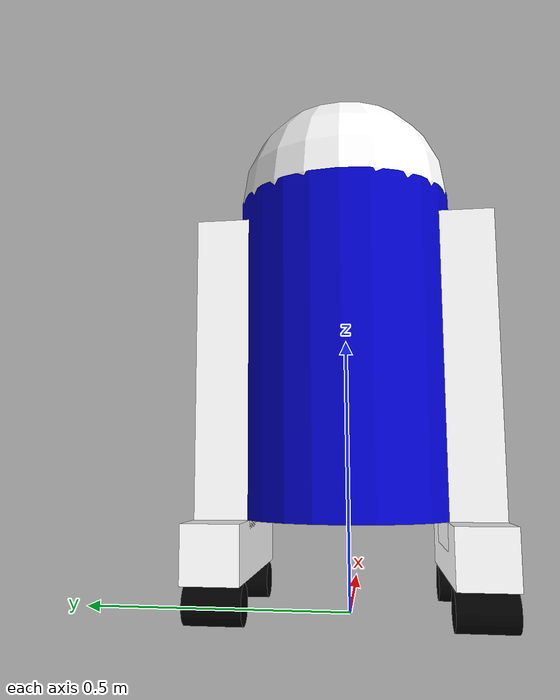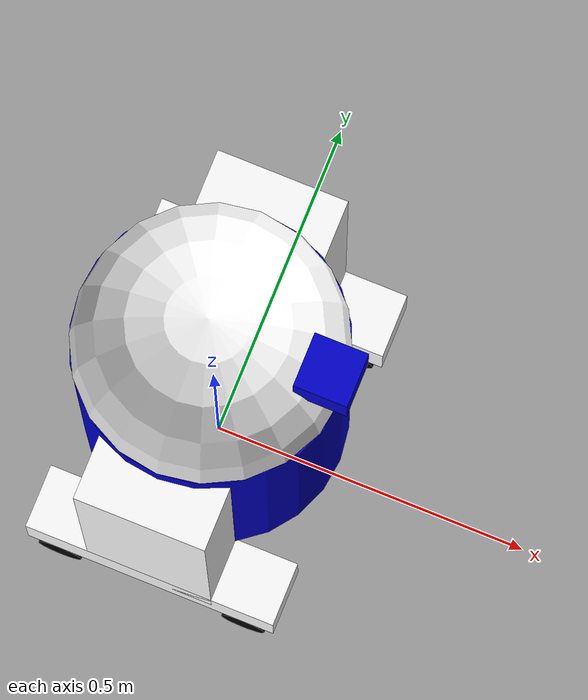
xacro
<?xml version="1.0"?>
<robot name="R2D2" xmlns:xacro="http://ros.org/wiki/xacro">
    <!--Constant-->
    <xacro:property name="PI" value="3.1415926535"/>

    <!--Chassis Parameters-->
    <xacro:property name="bodymass" value="10"/>
    <xacro:property name="bodyrad" value="0.2"/>
    <xacro:property name="bodylen" value="0.6"/>

    <!--Leg Parameters-->
    <xacro:property name="legmass" value="10"/>
    <xacro:property name="leglen" value="0.6"/>
    <xacro:property name="legwidth" value="0.2"/>
    <xacro:property name="leghigh" value="0.1"/>

    <!--Wheel Parameters-->
    <xacro:property name="wheelmass" value="1"/>
    <xacro:property name="wheelrad" value="0.035"/>
    <xacro:property name="wheellen" value="0.1"/>

    <!--Head Parameters-->
    <xacro:property name="headmass" value="2"/>
    <xacro:property name="headrad" value="0.2"/>

    <!-- Import Rviz Colors -->
    <xacro:include filename="$(find robotica)/models/materials.xacro"/>

    <!--Inertial Mask-->
    <xacro:macro name="default_inertial" params="mass">
        <inertial>
            <mass value="${mass}"/>
            <inertia ixx="1.0" ixy="0.0" ixz="0.0" iyy="1.0" iyz="0.0" izz="1.0" />
        </inertial>
    </xacro:macro>

    <!--Model-->

    <link name="base_link">
        <visual>
            <geometry>
                <cylinder radius="${bodyrad}" length="${bodylen}" />
            </geometry>
            <material name="blue"/>
            <origin xyz="0 0 0.47"/>
        </visual>
        <collision>
            <geometry>
                <cylinder radius="${bodyrad}" length="${bodylen}" />
            </geometry>
            <origin xyz="0 0 0.47"/>
        </collision>
        <xacro:default_inertial mass="${bodymass}"/>
    </link>

    <joint name="base_to_right_leg" type="fixed">
        <parent link="base_link"/>
        <child link="right_leg"/>
        <origin xyz="0 -0.22 0.72"/>
    </joint>

    <link name="right_leg">
        <visual>
            <geometry>
                <box size="${leglen} ${leghigh} ${legwidth}"/>
            </geometry>
            <origin rpy="0 ${PI/2} 0" xyz="0 0 -0.3"/>
            <material name="white"/>
        </visual>
        <collision>
            <geometry>
                <box size="${leglen} ${leghigh} ${legwidth}"/>
            </geometry>
            <origin rpy="0 ${PI/2} 0" xyz="0 0 -0.3"/>
        </collision>
        <xacro:default_inertial mass="${legmass}"/>
    </link>

    <joint name="base_to_left_leg" type="fixed">
        <parent link="base_link"/>
        <child link="left_leg"/>
        <origin xyz="0 0.22 0.72"/>
    </joint>

    <link name="left_leg">
        <visual>
            <geometry>
                <box size="${leglen} ${leghigh} ${legwidth}"/>
            </geometry>
            <origin rpy="0 ${PI/2} 0" xyz="0 0 -0.3"/>
            <material name="white"/>
        </visual>
        <collision>
            <geometry>
                <box size="${leglen} ${leghigh} ${legwidth}"/>
            </geometry>
            <origin rpy="0 ${PI/2} 0" xyz="0 0 -0.3"/>
        </collision>
        <xacro:default_inertial mass="${legmass}"/>
    </link>

    <joint name="right_base_joint" type="fixed">
        <parent link="right_leg"/>
        <child link="right_base"/>
        <origin xyz="0 0 -0.6"/>
    </joint>

    <link name="right_base">
        <visual>
            <geometry>
                <box size="0.4 0.1 0.1"/>
            </geometry>
            <material name="white"/>
        </visual>
        <collision>
            <geometry>
                <box size="0.4 0.1 0.1"/>
            </geometry>
        </collision>
        <xacro:default_inertial mass="10"/>
    </link>

    <joint name="right_front_wheel_joint" type="continuous">
        <parent link="right_base"/>
        <child link="right_front_wheel"/>
        <origin xyz="0.15 0 -0.085"/>
        <axis xyz="0 1 0"/>
    </joint>

    <link name="right_front_wheel">
        <visual>
            <geometry>
                <cylinder radius="${wheelrad}" length="${wheellen}"/>
            </geometry>
            <material name="black"/>
            <origin rpy="${PI/2} 0 0" xyz="0 0 0"/>
        </visual>
        <collision>
            <geometry>
                <cylinder radius="${wheelrad}" length="${wheellen}"/>
            </geometry>
            <origin rpy="${PI/2} 0 0" xyz="0 0 0"/>
        </collision>
        <xacro:default_inertial mass="${wheelmass}"/>
    </link>

    <joint name="right_back_wheel_joint" type="continuous">
        <parent link="right_base"/>
        <child link="right_back_wheel"/>
        <origin xyz="-0.15 0 -0.085"/>
        <axis xyz="0 1 0"/>
    </joint>

    <link name="right_back_wheel">
        <visual>
            <geometry>
                <cylinder radius="${wheelrad}" length="${wheellen}"/>
            </geometry>
            <material name="black"/>
            <origin rpy="${PI/2} 0 0" xyz="0 0 0"/>
        </visual>
        <collision>
            <geometry>
                <cylinder radius="${wheelrad}" length="${wheellen}"/>
            </geometry>
            <origin rpy="${PI/2} 0 0" xyz="0 0 0"/>
        </collision>
        <xacro:default_inertial mass="${wheelmass}"/>
    </link>

    <joint name="left_base_joint" type="fixed">
        <parent link="left_leg"/>
        <child link="left_base"/>
        <origin xyz="0 0 -0.6"/>
        <axis xyz="0 1 0"/>
    </joint>

    <link name="left_base">
        <visual>
            <geometry>
                <box size="0.4 0.1 0.1"/>
            </geometry>
            <material name="white"/>
        </visual>
        <collision>
            <geometry>
                <box size="0.4 0.1 0.1"/>
            </geometry>
        </collision>
        <xacro:default_inertial mass="10"/>
    </link>

    <joint name="left_front_wheel_joint" type="continuous">
        <parent link="left_base"/>
        <child link="left_front_wheel"/>
        <origin xyz="0.15 0 -0.085"/>
        <axis xyz="0 1 0"/>
    </joint>

    <link name="left_front_wheel">
        <visual>
            <geometry>
                <cylinder radius="${wheelrad}" length="${wheellen}"/>
            </geometry>
            <material name="black"/>
            <origin rpy="${PI/2} 0 0" xyz="0 0 0"/>
        </visual>
        <collision>
            <geometry>
                <cylinder radius="${wheelrad}" length="${wheellen}"/>
            </geometry>
            <origin rpy="${PI/2} 0 0" xyz="0 0 0"/>
        </collision>
        <xacro:default_inertial mass="${wheelmass}"/>
    </link>

    <joint name="left_back_wheel_joint" type="continuous">
        <parent link="left_base"/>
        <child link="left_back_wheel"/>
        <origin xyz="-0.15 0 -0.085"/>
        <axis xyz="0 1 0"/>
    </joint>

    <link name="left_back_wheel">
        <visual>
            <geometry>
                <cylinder radius="${wheelrad}" length="${wheellen}"/>
            </geometry>
            <material name="black"/>
            <origin rpy="${PI/2} 0 0" xyz="0 0 0"/>
        </visual>
        <collision>
            <geometry>
                <cylinder radius="${wheelrad}" length="${wheellen}"/>
            </geometry>
            <origin rpy="${PI/2} 0 0" xyz="0 0 0"/>
        </collision>
        <xacro:default_inertial mass="${wheelmass}"/>
    </link>

    <joint name="head_swivel" type="continuous">
        <parent link="base_link"/>
        <child link="head"/>
        <origin xyz="0 0 0.77"/>
        <axis xyz="0 0 1"/>
    </joint>

    <link name="head">
        <visual>
            <geometry>
                <sphere radius="${headrad}"/>
            </geometry>
            <material name="white"/>
        </visual>
        <collision>
            <geometry>
                <sphere radius="${headrad}"/>
            </geometry>
        </collision>
        <xacro:default_inertial mass="${headmass}"/>
    </link>

    <joint name="tobox" type="fixed">
        <parent link="head"/>
        <child link="box"/>
        <origin xyz="0.1814 0 0.1414"/>
    </joint>

    <link name="box">
        <visual>
            <geometry>
                <box size="0.08 0.08 0.08"/>
            </geometry>
            <material name="blue"/>
        </visual>
        <collision>
            <geometry>
                <box size="0.08 0.08 0.08"/>
            </geometry>
        </collision>
        <xacro:default_inertial mass="1"/>
    </link>

    <!--Transmition-->

    <transmission name="right_front_wheel_trans">
      <type>transmission_interface/SimpleTransmission</type>
      <actuator name="right_front_wheel_motor">
        <mechanicalReduction>1</mechanicalReduction>
      </actuator>
      <joint name="right_front_wheel_joint">
        <hardwareInterface>hardware_interface/VelocityJointInterface</hardwareInterface>
      </joint>
    </transmission>

    <transmission name="right_back_wheel_trans">
      <type>transmission_interface/SimpleTransmission</type>
      <actuator name="right_back_wheel_motor">
        <mechanicalReduction>1</mechanicalReduction>
      </actuator>
      <joint name="right_back_wheel_joint">
        <hardwareInterface>hardware_interface/VelocityJointInterface</hardwareInterface>
      </joint>
    </transmission>

    <transmission name="left_front_wheel_trans">
      <type>transmission_interface/SimpleTransmission</type>
      <actuator name="left_front_wheel_motor">
        <mechanicalReduction>1</mechanicalReduction>
      </actuator>
      <joint name="left_front_wheel_joint">
        <hardwareInterface>hardware_interface/VelocityJointInterface</hardwareInterface>
      </joint>
    </transmission>

    <transmission name="left_back_wheel_trans">
      <type>transmission_interface/SimpleTransmission</type>
      <actuator name="left_back_wheel_motor">
        <mechanicalReduction>1</mechanicalReduction>
      </actuator>
      <joint name="left_back_wheel_joint">
        <hardwareInterface>hardware_interface/VelocityJointInterface</hardwareInterface>
      </joint>
    </transmission>

    <transmission name="head_swivel_trans">
        <type>transmission_interface/SimpleTransmission</type>
        <actuator name="$head_swivel_motor">
            <mechanicalReduction>1</mechanicalReduction>
        </actuator>
        <joint name="head_swivel">
            <hardwareInterface>hardware_interface/PositionJointInterface</hardwareInterface>
        </joint>
    </transmission>

    <!-- Gazebo plugin for ROS Control -->
    <gazebo>
        <plugin name="gazebo_ros_control" filename="libgazebo_ros_control.so">
            <robotNamespace>/</robotNamespace>
        </plugin>
    </gazebo>

    <!--Plugin Wheels-->

    <gazebo reference="right_front_wheel">
      <mu1 value="200.0"/>
      <mu2 value="100.0"/>
      <kp value="10000000.0" />
      <kd value="1.0" />
      <material>Gazebo/Grey</material>
    </gazebo>

    <gazebo reference="right_back_wheel">
      <mu1 value="200.0"/>
      <mu2 value="100.0"/>
      <kp value="10000000.0" />
      <kd value="1.0" />
      <material>Gazebo/Grey</material>
    </gazebo>

    <gazebo reference="left_front_wheel">
      <mu1 value="200.0"/>
      <mu2 value="100.0"/>
      <kp value="10000000.0" />
      <kd value="1.0" />
      <material>Gazebo/Grey</material>
    </gazebo>

    <gazebo reference="left_back_wheel">
      <mu1 value="200.0"/>
      <mu2 value="100.0"/>
      <kp value="10000000.0" />
      <kd value="1.0" />
      <material>Gazebo/Grey</material>
    </gazebo>

</robot>

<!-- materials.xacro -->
<robot name="material" xmlns:xacro="http://ros.org/wiki/xacro">
    <material name="black">
        <color rgba="0 0 0 1"/>
    </material>

    <material name="blue">
        <color rgba="0 0 0.8 1"/>
    </material>

    <material name="white">
        <color rgba="1 1 1 1"/>
    </material>
</robot>
